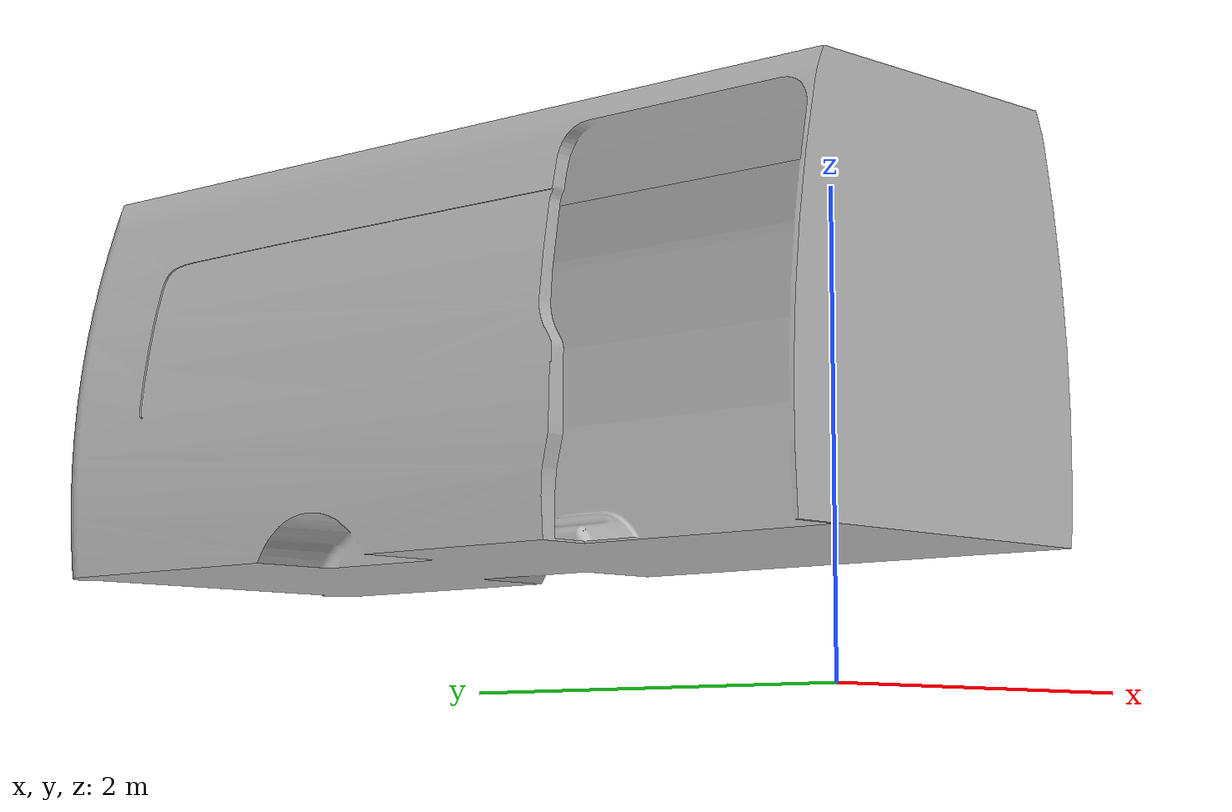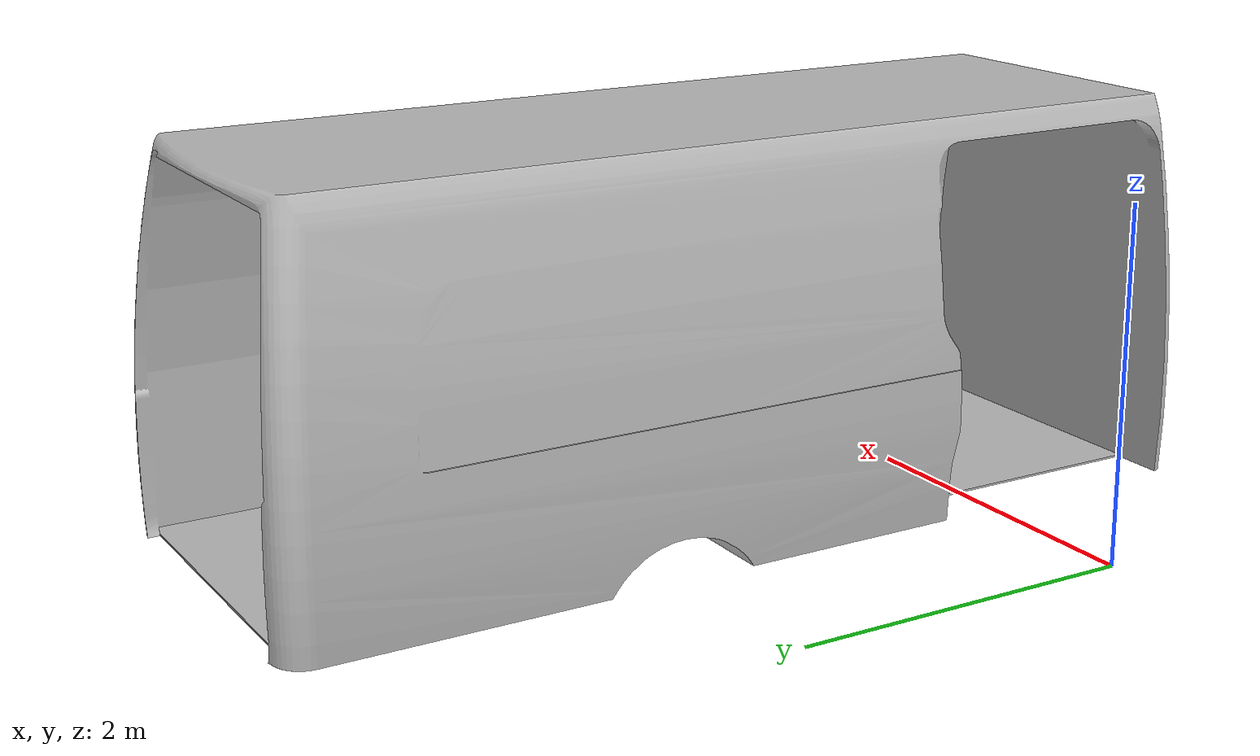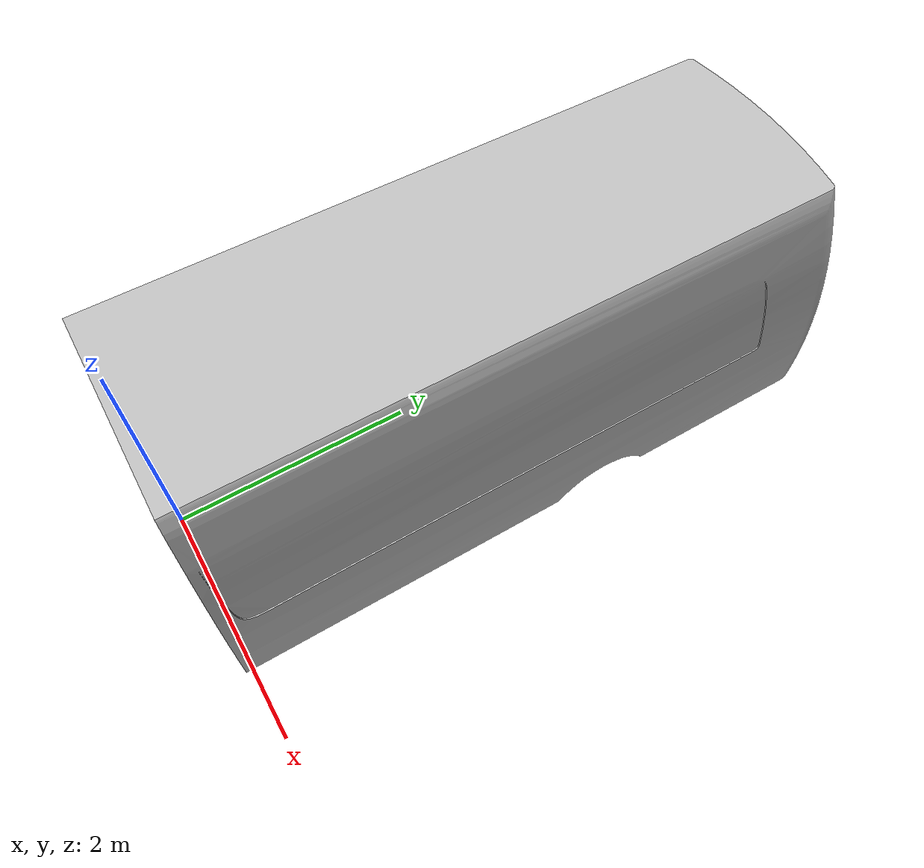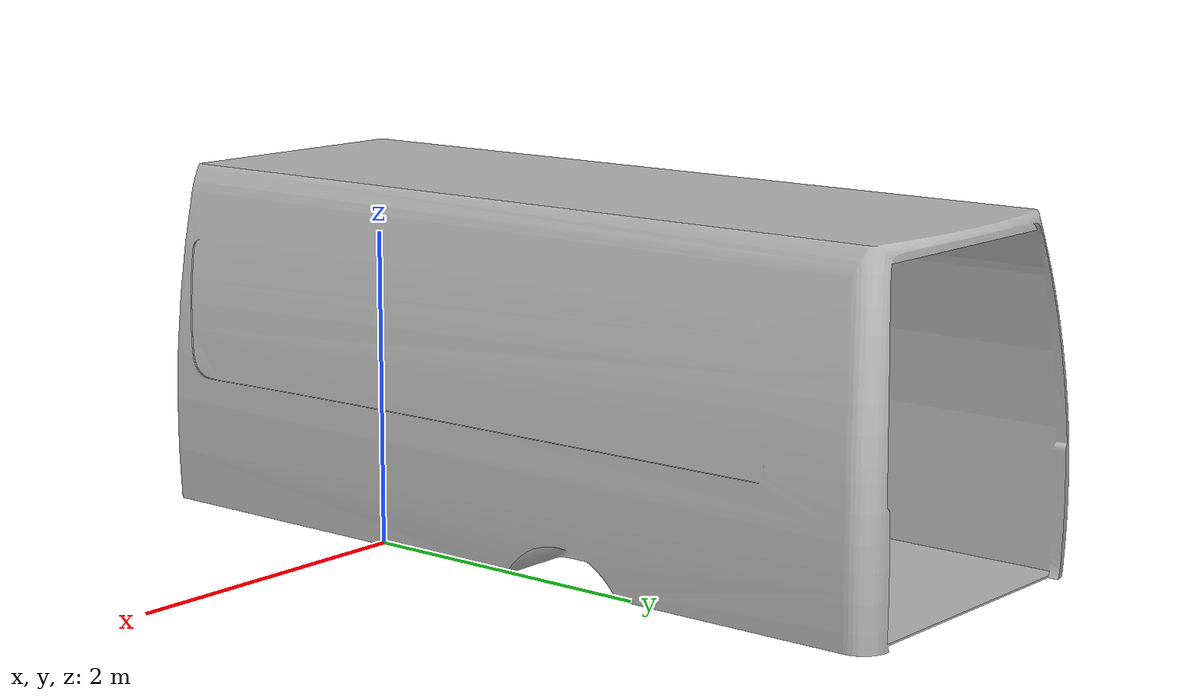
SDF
<?xml version="1.0" ?>
<sdf version="1.4">
  <model name="van">
    <static>true</static>
    <link name="link">
      <inertial>
        <mass>1000</mass>
      </inertial>
      <collision name="collision">
        <geometry>
          <mesh>
            <uri>model://van/meshes/collision.stl</uri>
          </mesh>
        </geometry>
      </collision>
      <visual name="visual">
        <transparency>0.0</transparency>
        <geometry>
          <mesh>
            <uri>model://van/meshes/visual.stl</uri>
          </mesh>
        </geometry>
      </visual>
    </link>
  </model>
</sdf>
